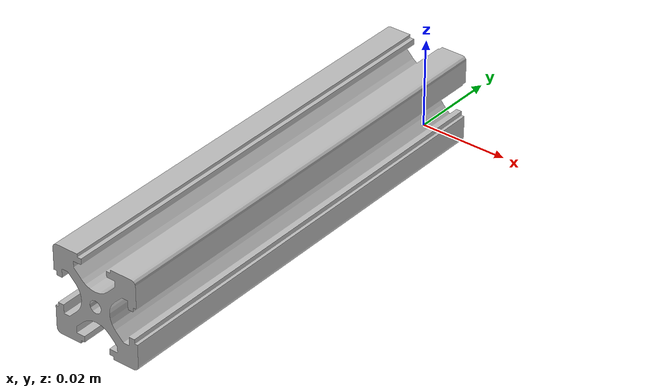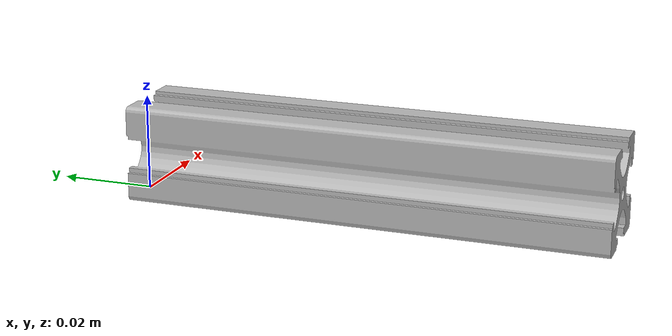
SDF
<?xml version="1.0" ?>
<sdf version="1.5">
  <model name="F20_20">
    <static>true</static>
    <link name="link">
      <pose>0 0 0 0 0 0</pose>
      <collision name="collision">
        <geometry>
          <mesh>
            <uri>model://F20_20/meshes/F20_20.dae</uri>
          </mesh>
        </geometry>
      </collision>
      <visual name="visual">
        <geometry>
          <mesh>
            <uri>model://F20_20/meshes/F20_20.dae</uri>
          </mesh>
        </geometry>
      </visual>
    </link>
  </model>
</sdf>
